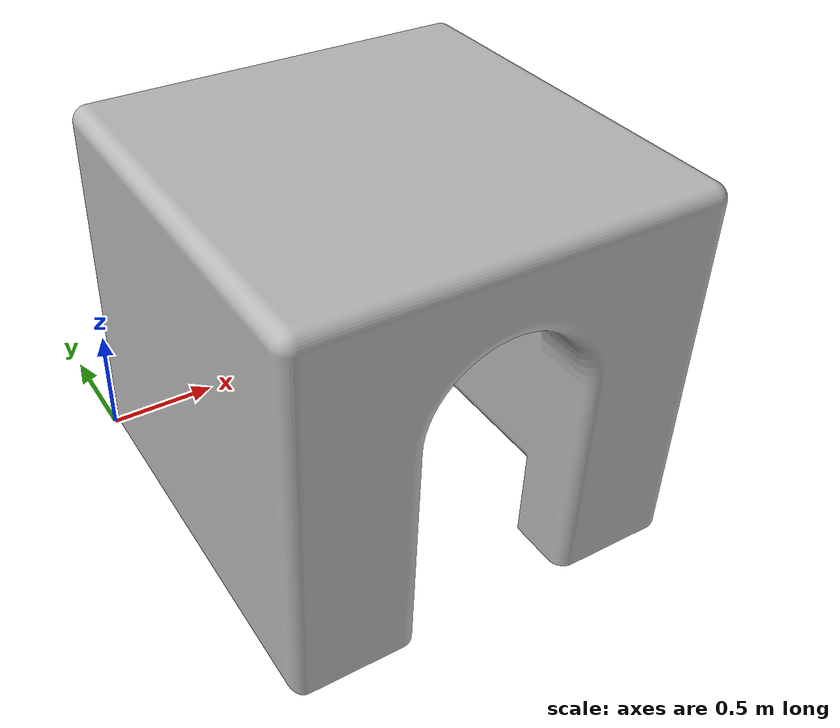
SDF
<?xml version='1.0'?>
<sdf version="1.6">
	<model name="Bunker">
      <static>true</static>
      <link name="body">
        <collision name = 'collision'>
          <geometry>
            <mesh>
              <uri>model://bunker/bunker.dae</uri>
              <scale>.3048 .3048 .3048</scale>
            </mesh>
          </geometry>
        </collision>
        <visual name="visual">
          <geometry>
            <mesh>
            	<uri>model://bunker/bunker.dae</uri>
            	<scale>.3048 .3048 .3048</scale>
            </mesh>
          </geometry>
        </visual>
      </link>
    </model>
</sdf>
